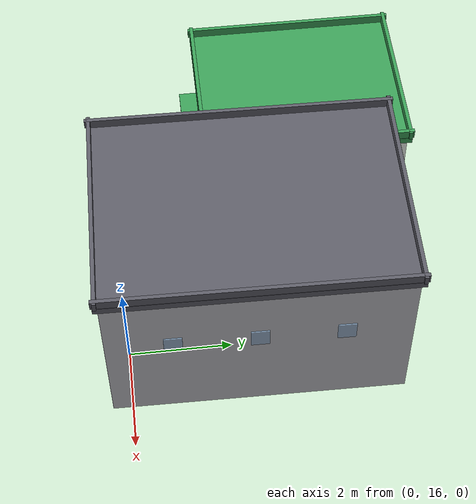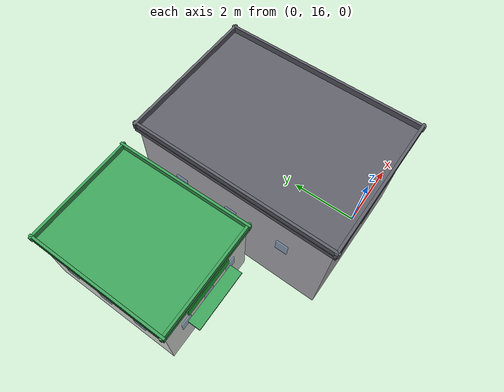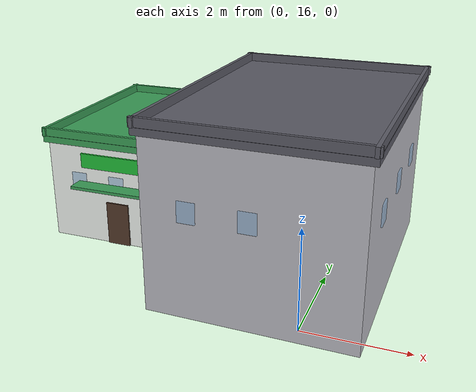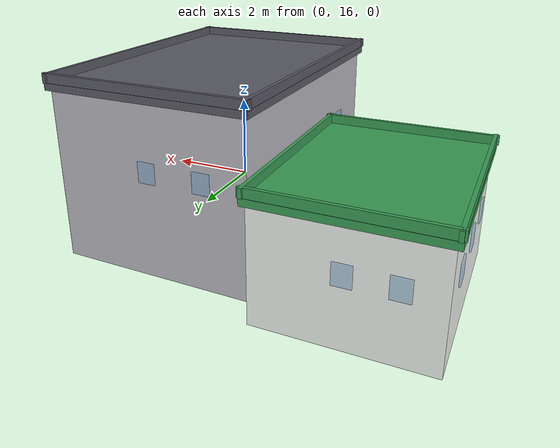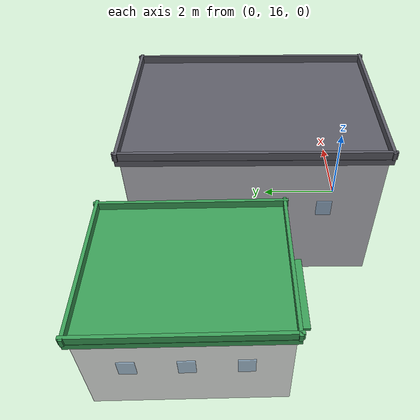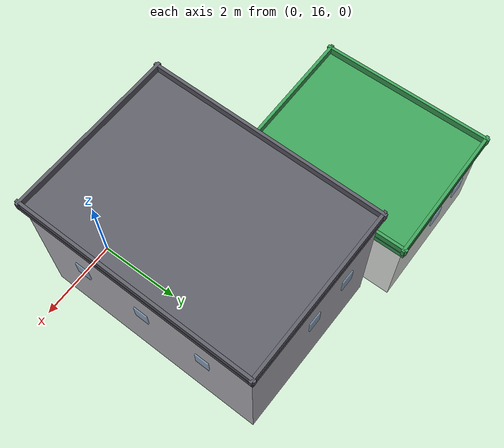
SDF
<sdf version="1.10">
 <world name="city">
  <model name="pharmacy">
   <static>true</static>
   <pose>-4.60933380126953 19.8505111694336 0 0 0 -1.56880994552281</pose>
   <link name="link">
    <collision name="body_col">
     <pose>0 0 1.1 0 0 0</pose>
     <geometry><box><size>4 3.2 2.2</size></box></geometry>
    </collision>
    <visual name="body_vis">
     <pose>0 0 1.1 0 0 0</pose>
     <geometry><box><size>4 3.2 2.2</size></box></geometry>
     <material>
      <ambient>0.939999998 0.959999979 0.939999998 1</ambient>
      <diffuse>0.939999998 0.959999979 0.939999998 1</diffuse>
      <specular>0.0799999982 0.0799999982 0.0799999982 1</specular>
     </material>
    </visual>
    <collision name="roof_col">
     <pose>0 0 2.27 0 0 0</pose>
     <geometry><box><size>4.16 3.36 0.14</size></box></geometry>
    </collision>
    <visual name="roof_vis">
     <pose>0 0 2.27 0 0 0</pose>
     <geometry><box><size>4.16 3.36 0.14</size></box></geometry>
     <material>
      <ambient>0.230000004 0.620000005 0.340000004 1</ambient>
      <diffuse>0.230000004 0.620000005 0.340000004 1</diffuse>
      <specular>0.0799999982 0.0799999982 0.0799999982 1</specular>
     </material>
    </visual>
    <visual name="p1_vis">
     <pose>0 1.636 2.428 0 0 0</pose>
     <geometry><box><size>4.22 0.072 0.18</size></box></geometry>
     <material>
      <ambient>0.230000004 0.620000005 0.340000004 1</ambient>
      <diffuse>0.230000004 0.620000005 0.340000004 1</diffuse>
      <specular>0.0799999982 0.0799999982 0.0799999982 1</specular>
     </material>
    </visual>
    <visual name="p2_vis">
     <pose>0 -1.636 2.428 0 0 0</pose>
     <geometry><box><size>4.22 0.072 0.18</size></box></geometry>
     <material>
      <ambient>0.230000004 0.620000005 0.340000004 1</ambient>
      <diffuse>0.230000004 0.620000005 0.340000004 1</diffuse>
      <specular>0.0799999982 0.0799999982 0.0799999982 1</specular>
     </material>
    </visual>
    <visual name="p3_vis">
     <pose>2.036 0 2.428 0 0 0</pose>
     <geometry><box><size>0.072 3.42 0.18</size></box></geometry>
     <material>
      <ambient>0.230000004 0.620000005 0.340000004 1</ambient>
      <diffuse>0.230000004 0.620000005 0.340000004 1</diffuse>
      <specular>0.0799999982 0.0799999982 0.0799999982 1</specular>
     </material>
    </visual>
    <visual name="p4_vis">
     <pose>-2.036 0 2.428 0 0 0</pose>
     <geometry><box><size>0.072 3.42 0.18</size></box></geometry>
     <material>
      <ambient>0.230000004 0.620000005 0.340000004 1</ambient>
      <diffuse>0.230000004 0.620000005 0.340000004 1</diffuse>
      <specular>0.0799999982 0.0799999982 0.0799999982 1</specular>
     </material>
    </visual>
    <visual name="door_vis">
     <pose>2.016 0 0.48 0 0 0</pose>
     <geometry><box><size>0.04 0.52 0.96</size></box></geometry>
     <material>
      <ambient>0.319999993 0.219999999 0.159999996 1</ambient>
      <diffuse>0.319999993 0.219999999 0.159999996 1</diffuse>
      <specular>0.0799999982 0.0799999982 0.0799999982 1</specular>
     </material>
    </visual>
    <visual name="win_east_0">
     <pose>2.012 -0.896 1.364 0 0 0</pose>
     <geometry><box><size>0.032 0.34 0.4</size></box></geometry>
     <material>
      <ambient>0.550000012 0.720000029 0.879999995 0.550000012</ambient>
      <diffuse>0.550000012 0.720000029 0.879999995 0.550000012</diffuse>
      <specular>0.0799999982 0.0799999982 0.0799999982 1</specular>
      <transparency>0.35</transparency>
     </material>
    </visual>
    <visual name="win_east_1">
     <pose>2.012 0 1.364 0 0 0</pose>
     <geometry><box><size>0.032 0.34 0.4</size></box></geometry>
     <material>
      <ambient>0.550000012 0.720000029 0.879999995 0.550000012</ambient>
      <diffuse>0.550000012 0.720000029 0.879999995 0.550000012</diffuse>
      <specular>0.0799999982 0.0799999982 0.0799999982 1</specular>
      <transparency>0.35</transparency>
     </material>
    </visual>
    <visual name="win_east_2">
     <pose>2.012 0.896 1.364 0 0 0</pose>
     <geometry><box><size>0.032 0.34 0.4</size></box></geometry>
     <material>
      <ambient>0.550000012 0.720000029 0.879999995 0.550000012</ambient>
      <diffuse>0.550000012 0.720000029 0.879999995 0.550000012</diffuse>
      <specular>0.0799999982 0.0799999982 0.0799999982 1</specular>
      <transparency>0.35</transparency>
     </material>
    </visual>
    <visual name="win_south_0">
     <pose>-1.12 -1.612 1.364 0 0 0</pose>
     <geometry><box><size>0.34 0.032 0.4</size></box></geometry>
     <material>
      <ambient>0.550000012 0.720000029 0.879999995 0.550000012</ambient>
      <diffuse>0.550000012 0.720000029 0.879999995 0.550000012</diffuse>
      <specular>0.0799999982 0.0799999982 0.0799999982 1</specular>
      <transparency>0.35</transparency>
     </material>
    </visual>
    <visual name="win_south_1">
     <pose>0 -1.612 1.364 0 0 0</pose>
     <geometry><box><size>0.34 0.032 0.4</size></box></geometry>
     <material>
      <ambient>0.550000012 0.720000029 0.879999995 0.550000012</ambient>
      <diffuse>0.550000012 0.720000029 0.879999995 0.550000012</diffuse>
      <specular>0.0799999982 0.0799999982 0.0799999982 1</specular>
      <transparency>0.35</transparency>
     </material>
    </visual>
    <visual name="win_south_2">
     <pose>1.12 -1.612 1.364 0 0 0</pose>
     <geometry><box><size>0.34 0.032 0.4</size></box></geometry>
     <material>
      <ambient>0.550000012 0.720000029 0.879999995 0.550000012</ambient>
      <diffuse>0.550000012 0.720000029 0.879999995 0.550000012</diffuse>
      <specular>0.0799999982 0.0799999982 0.0799999982 1</specular>
      <transparency>0.35</transparency>
     </material>
    </visual>
    <visual name="win_west_0">
     <pose>-2.012 -0.896 1.364 0 0 0</pose>
     <geometry><box><size>0.032 0.34 0.4</size></box></geometry>
     <material>
      <ambient>0.550000012 0.720000029 0.879999995 0.550000012</ambient>
      <diffuse>0.550000012 0.720000029 0.879999995 0.550000012</diffuse>
      <specular>0.0799999982 0.0799999982 0.0799999982 1</specular>
      <transparency>0.35</transparency>
     </material>
    </visual>
    <visual name="win_west_1">
     <pose>-2.012 0 1.364 0 0 0</pose>
     <geometry><box><size>0.032 0.34 0.4</size></box></geometry>
     <material>
      <ambient>0.550000012 0.720000029 0.879999995 0.550000012</ambient>
      <diffuse>0.550000012 0.720000029 0.879999995 0.550000012</diffuse>
      <specular>0.0799999982 0.0799999982 0.0799999982 1</specular>
      <transparency>0.35</transparency>
     </material>
    </visual>
    <visual name="win_north_0">
     <pose>-1.12 1.612 1.364 0 0 0</pose>
     <geometry><box><size>0.34 0.032 0.4</size></box></geometry>
     <material>
      <ambient>0.550000012 0.720000029 0.879999995 0.550000012</ambient>
      <diffuse>0.550000012 0.720000029 0.879999995 0.550000012</diffuse>
      <specular>0.0799999982 0.0799999982 0.0799999982 1</specular>
      <transparency>0.35</transparency>
     </material>
    </visual>
    <visual name="win_north_1">
     <pose>0 1.612 1.364 0 0 0</pose>
     <geometry><box><size>0.34 0.032 0.4</size></box></geometry>
     <material>
      <ambient>0.550000012 0.720000029 0.879999995 0.550000012</ambient>
      <diffuse>0.550000012 0.720000029 0.879999995 0.550000012</diffuse>
      <specular>0.0799999982 0.0799999982 0.0799999982 1</specular>
      <transparency>0.35</transparency>
     </material>
    </visual>
    <visual name="win_north_2">
     <pose>1.12 1.612 1.364 0 0 0</pose>
     <geometry><box><size>0.34 0.032 0.4</size></box></geometry>
     <material>
      <ambient>0.550000012 0.720000029 0.879999995 0.550000012</ambient>
      <diffuse>0.550000012 0.720000029 0.879999995 0.550000012</diffuse>
      <specular>0.0799999982 0.0799999982 0.0799999982 1</specular>
      <transparency>0.35</transparency>
     </material>
    </visual>
    <visual name="awning">
     <pose>2.22 0 1.364 0 0 0</pose>
     <geometry><box><size>0.36 1.76 0.064</size></box></geometry>
     <material>
      <ambient>0.230000004 0.620000005 0.340000004 1</ambient>
      <diffuse>0.230000004 0.620000005 0.340000004 1</diffuse>
      <specular>0.0799999982 0.0799999982 0.0799999982 1</specular>
     </material>
    </visual>
    <visual name="sign_vis">
     <pose>2.028 0 1.87 0 0 0</pose>
     <geometry><box><size>0.048 1.6 0.32</size></box></geometry>
     <material>
      <ambient>0.129999995 0.74000001 0.219999999 1</ambient>
      <diffuse>0.129999995 0.74000001 0.219999999 1</diffuse>
      <specular>0.0799999982 0.0799999982 0.0799999982 1</specular>
     </material>
    </visual>
    <inertial>
     <mass>1</mass>
     <inertia><ixx>1</ixx><ixy>0</ixy><ixz>0</ixz><iyy>1</iyy><iyz>0</iyz><izz>1</izz></inertia>
    </inertial>
   </link>
  </model>
  <model name="northeast_apartment">
   <static>true</static>
   <pose>-0.79544677734375 18.4521026611328 0 0 0 -1.58435001384222</pose>
   <link name="link">
    <collision name="body_col">
     <pose>0 0 1.7 0 0 0</pose>
     <geometry><box><size>5.6 4 3.4</size></box></geometry>
    </collision>
    <visual name="body_vis">
     <pose>0 0 1.7 0 0 0</pose>
     <geometry><box><size>5.6 4 3.4</size></box></geometry>
     <material>
      <ambient>0.730000019 0.730000019 0.75999999 1</ambient>
      <diffuse>0.730000019 0.730000019 0.75999999 1</diffuse>
      <specular>0.0799999982 0.0799999982 0.0799999982 1</specular>
     </material>
    </visual>
    <collision name="roof_col">
     <pose>0 0 3.47 0 0 0</pose>
     <geometry><box><size>5.76 4.16 0.14</size></box></geometry>
    </collision>
    <visual name="roof_vis">
     <pose>0 0 3.47 0 0 0</pose>
     <geometry><box><size>5.76 4.16 0.14</size></box></geometry>
     <material>
      <ambient>0.360000014 0.360000014 0.400000006 1</ambient>
      <diffuse>0.360000014 0.360000014 0.400000006 1</diffuse>
      <specular>0.0799999982 0.0799999982 0.0799999982 1</specular>
     </material>
    </visual>
    <visual name="p1_vis">
     <pose>0 2.036 3.628 0 0 0</pose>
     <geometry><box><size>5.82 0.072 0.18</size></box></geometry>
     <material>
      <ambient>0.360000014 0.360000014 0.400000006 1</ambient>
      <diffuse>0.360000014 0.360000014 0.400000006 1</diffuse>
      <specular>0.0799999982 0.0799999982 0.0799999982 1</specular>
     </material>
    </visual>
    <visual name="p2_vis">
     <pose>0 -2.036 3.628 0 0 0</pose>
     <geometry><box><size>5.82 0.072 0.18</size></box></geometry>
     <material>
      <ambient>0.360000014 0.360000014 0.400000006 1</ambient>
      <diffuse>0.360000014 0.360000014 0.400000006 1</diffuse>
      <specular>0.0799999982 0.0799999982 0.0799999982 1</specular>
     </material>
    </visual>
    <visual name="p3_vis">
     <pose>2.836 0 3.628 0 0 0</pose>
     <geometry><box><size>0.072 4.22 0.18</size></box></geometry>
     <material>
      <ambient>0.360000014 0.360000014 0.400000006 1</ambient>
      <diffuse>0.360000014 0.360000014 0.400000006 1</diffuse>
      <specular>0.0799999982 0.0799999982 0.0799999982 1</specular>
     </material>
    </visual>
    <visual name="p4_vis">
     <pose>-2.836 0 3.628 0 0 0</pose>
     <geometry><box><size>0.072 4.22 0.18</size></box></geometry>
     <material>
      <ambient>0.360000014 0.360000014 0.400000006 1</ambient>
      <diffuse>0.360000014 0.360000014 0.400000006 1</diffuse>
      <specular>0.0799999982 0.0799999982 0.0799999982 1</specular>
     </material>
    </visual>
    <visual name="door_vis">
     <pose>0 -2.016 0.48 0 0 0</pose>
     <geometry><box><size>0.52 0.04 0.96</size></box></geometry>
     <material>
      <ambient>0.319999993 0.219999999 0.159999996 1</ambient>
      <diffuse>0.319999993 0.219999999 0.159999996 1</diffuse>
      <specular>0.0799999982 0.0799999982 0.0799999982 1</specular>
     </material>
    </visual>
    <visual name="win_south_0">
     <pose>-1.568 -2.012 2.108 0 0 0</pose>
     <geometry><box><size>0.34 0.032 0.4</size></box></geometry>
     <material>
      <ambient>0.550000012 0.720000029 0.879999995 0.550000012</ambient>
      <diffuse>0.550000012 0.720000029 0.879999995 0.550000012</diffuse>
      <specular>0.0799999982 0.0799999982 0.0799999982 1</specular>
      <transparency>0.35</transparency>
     </material>
    </visual>
    <visual name="win_south_1">
     <pose>0 -2.012 2.108 0 0 0</pose>
     <geometry><box><size>0.34 0.032 0.4</size></box></geometry>
     <material>
      <ambient>0.550000012 0.720000029 0.879999995 0.550000012</ambient>
      <diffuse>0.550000012 0.720000029 0.879999995 0.550000012</diffuse>
      <specular>0.0799999982 0.0799999982 0.0799999982 1</specular>
      <transparency>0.35</transparency>
     </material>
    </visual>
    <visual name="win_south_2">
     <pose>1.568 -2.012 2.108 0 0 0</pose>
     <geometry><box><size>0.34 0.032 0.4</size></box></geometry>
     <material>
      <ambient>0.550000012 0.720000029 0.879999995 0.550000012</ambient>
      <diffuse>0.550000012 0.720000029 0.879999995 0.550000012</diffuse>
      <specular>0.0799999982 0.0799999982 0.0799999982 1</specular>
      <transparency>0.35</transparency>
     </material>
    </visual>
    <visual name="win_west_0">
     <pose>-2.812 -1.12 2.108 0 0 0</pose>
     <geometry><box><size>0.032 0.34 0.4</size></box></geometry>
     <material>
      <ambient>0.550000012 0.720000029 0.879999995 0.550000012</ambient>
      <diffuse>0.550000012 0.720000029 0.879999995 0.550000012</diffuse>
      <specular>0.0799999982 0.0799999982 0.0799999982 1</specular>
      <transparency>0.35</transparency>
     </material>
    </visual>
    <visual name="win_west_1">
     <pose>-2.812 0 2.108 0 0 0</pose>
     <geometry><box><size>0.032 0.34 0.4</size></box></geometry>
     <material>
      <ambient>0.550000012 0.720000029 0.879999995 0.550000012</ambient>
      <diffuse>0.550000012 0.720000029 0.879999995 0.550000012</diffuse>
      <specular>0.0799999982 0.0799999982 0.0799999982 1</specular>
      <transparency>0.35</transparency>
     </material>
    </visual>
    <visual name="win_east_0">
     <pose>2.812 -1.12 2.108 0 0 0</pose>
     <geometry><box><size>0.032 0.34 0.4</size></box></geometry>
     <material>
      <ambient>0.550000012 0.720000029 0.879999995 0.550000012</ambient>
      <diffuse>0.550000012 0.720000029 0.879999995 0.550000012</diffuse>
      <specular>0.0799999982 0.0799999982 0.0799999982 1</specular>
      <transparency>0.35</transparency>
     </material>
    </visual>
    <visual name="win_east_1">
     <pose>2.812 0 2.108 0 0 0</pose>
     <geometry><box><size>0.032 0.34 0.4</size></box></geometry>
     <material>
      <ambient>0.550000012 0.720000029 0.879999995 0.550000012</ambient>
      <diffuse>0.550000012 0.720000029 0.879999995 0.550000012</diffuse>
      <specular>0.0799999982 0.0799999982 0.0799999982 1</specular>
      <transparency>0.35</transparency>
     </material>
    </visual>
    <visual name="win_north_0">
     <pose>-1.568 2.012 2.108 0 0 0</pose>
     <geometry><box><size>0.34 0.032 0.4</size></box></geometry>
     <material>
      <ambient>0.550000012 0.720000029 0.879999995 0.550000012</ambient>
      <diffuse>0.550000012 0.720000029 0.879999995 0.550000012</diffuse>
      <specular>0.0799999982 0.0799999982 0.0799999982 1</specular>
      <transparency>0.35</transparency>
     </material>
    </visual>
    <visual name="win_north_1">
     <pose>0 2.012 2.108 0 0 0</pose>
     <geometry><box><size>0.34 0.032 0.4</size></box></geometry>
     <material>
      <ambient>0.550000012 0.720000029 0.879999995 0.550000012</ambient>
      <diffuse>0.550000012 0.720000029 0.879999995 0.550000012</diffuse>
      <specular>0.0799999982 0.0799999982 0.0799999982 1</specular>
      <transparency>0.35</transparency>
     </material>
    </visual>
    <visual name="win_north_2">
     <pose>1.568 2.012 2.108 0 0 0</pose>
     <geometry><box><size>0.34 0.032 0.4</size></box></geometry>
     <material>
      <ambient>0.550000012 0.720000029 0.879999995 0.550000012</ambient>
      <diffuse>0.550000012 0.720000029 0.879999995 0.550000012</diffuse>
      <specular>0.0799999982 0.0799999982 0.0799999982 1</specular>
      <transparency>0.35</transparency>
     </material>
    </visual>
    <inertial>
     <mass>1</mass>
     <inertia><ixx>1</ixx><ixy>0</ixy><ixz>0</ixz><iyy>1</iyy><iyz>0</iyz><izz>1</izz></inertia>
    </inertial>
   </link>
  </model>
 </world>
</sdf>
